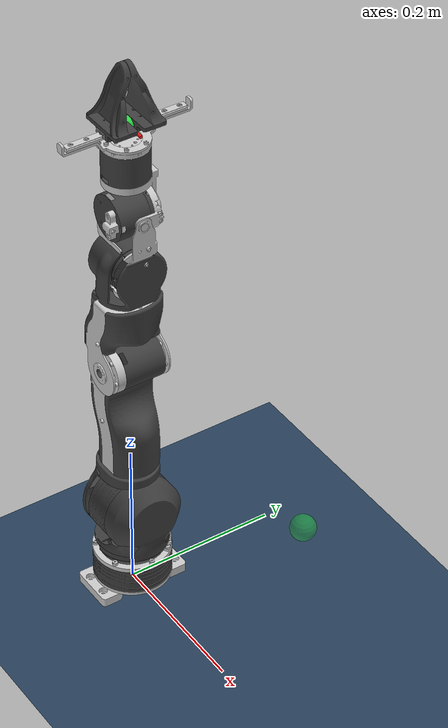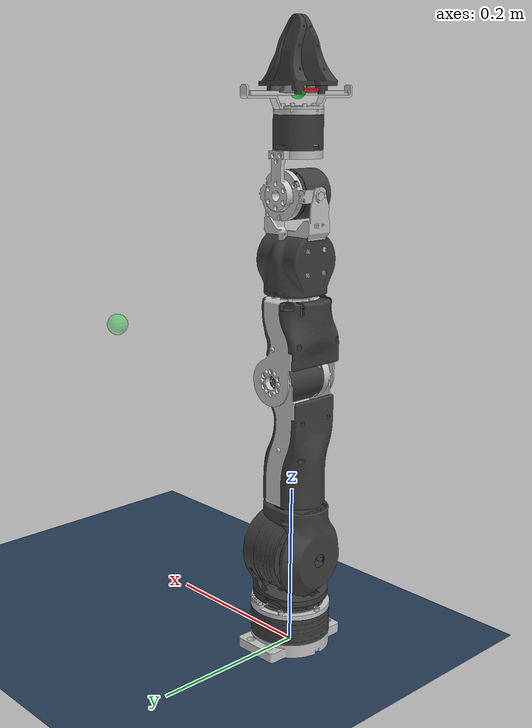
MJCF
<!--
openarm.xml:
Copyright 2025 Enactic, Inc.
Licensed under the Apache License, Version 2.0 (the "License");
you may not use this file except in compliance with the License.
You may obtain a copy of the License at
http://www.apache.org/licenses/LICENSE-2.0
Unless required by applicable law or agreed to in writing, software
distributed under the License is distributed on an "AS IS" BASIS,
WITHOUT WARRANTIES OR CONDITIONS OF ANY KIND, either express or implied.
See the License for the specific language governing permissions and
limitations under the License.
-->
<mujoco model="openarm_so101_umi">
  <compiler angle="radian" autolimits="true" meshdir="meshes"/>
  <option timestep="0.002" gravity="0 0 0" integrator="implicitfast"/>

  <statistic center="0.2 0 0.35" extent="0.9" meansize="0.05"/>

  <visual>
    <headlight diffuse="0.6 0.6 0.6" ambient="0.3 0.3 0.3" specular="0 0 0"/>
    <rgba haze="0.15 0.25 0.35 1"/>
    <global azimuth="150" elevation="-20"/>
  </visual>

  <asset>
    <texture type="skybox" builtin="gradient" rgb1="0.3 0.5 0.7" rgb2="0 0 0" width="512" height="3072"/>
    <texture type="2d" name="groundplane" builtin="checker" mark="edge" rgb1="0.2 0.3 0.4" rgb2="0.1 0.2 0.3"
      markrgb="0.8 0.8 0.8" width="300" height="300"/>
    <material name="groundplane" texture="groundplane" texuniform="true" texrepeat="5 5" reflectance="0.2"/>
  </asset>

  <include file="openarm.xml"/>

  <worldbody>
    <light pos="0 0 1.5" dir="0 0 -1" directional="true"/>
    <geom name="floor" size="0 0 0.05" type="plane" material="groundplane"/>
    <body name="ee_target" mocap="true" pos="0.35 0 0.35">
      <site name="ee_target_site" type="sphere" size="0.015" rgba="0.1 0.9 0.2 0.4" group="0"/>
    </body>
  </worldbody>

  <keyframe>
    <!-- nq=9: j1..j7, finger1, finger2. Table-ready: elbow ~80deg. -->
    <key name="home"
      qpos="0 0.35 0 1.40 0 0 0 0.02 0.02"
      ctrl="0 0.35 0 1.40 0 0 0 0.02"/>
  </keyframe>
</mujoco>

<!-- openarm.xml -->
<mujoco model="openarm">
  <default>
    <default class="robot">
      <default class="motor">
        <joint damping="0.25" frictionloss="0.02"/>
        <motor ctrlrange="-10 10"/>
      </default>
      <default class="collision">
        <geom material="collision_material" condim="3" conaffinity="1" priority="1" group="3" solref="0.005 1"
          friction="1 0.01 0.01"/>
        <equality solimp="0.99 0.999 1e-05" solref="0.005 1"/>
      </default>
      <default class="visual">
        <geom material="visualgeom" contype="0" conaffinity="0" group="2"/>
      </default>
    </default>
  </default>

  <compiler angle="radian" meshdir="meshes"/>

  <asset>
    <material name="default_material" rgba="0.7 0.7 0.7 1"/>
    <material name="collision_material" rgba="1.0 0.28 0.1 0.9"/>
    <material name="matte_black" rgba="0.24705882 0.24705882 0.24705882 1.0" reflectance="0.05098039000000001"
      shininess="0.5"/>
    <material name="metal_silver" rgba="0.79607843 0.79607843 0.79607843 1.0" reflectance="1.0" shininess="1.0"/>
    <material name="robot_blue" rgba="0.2 0.4 0.8 1.0" reflectance="0.3" shininess="0.8"/>
    <material name="robot_gray" rgba="0.5 0.5 0.5 1.0" reflectance="0.2" shininess="0.6"/>

    <!-- Collision STLs omitted (not shipped in upstream v1 mesh pack). -->

    <mesh name="link0_0.obj" file="visual/arm/link0_0.obj" scale="0.001 0.001 0.001"/>
    <mesh name="link0_1.obj" file="visual/arm/link0_1.obj" scale="0.001 0.001 0.001"/>
    <mesh name="link1_0.obj" file="visual/arm/link1_0.obj" scale="0.001 0.001 0.001"/>
    <mesh name="link1_1.obj" file="visual/arm/link1_1.obj" scale="0.001 0.001 0.001"/>
    <mesh name="link1_2.obj" file="visual/arm/link1_2.obj" scale="0.001 0.001 0.001"/>
    <mesh name="link1_3.obj" file="visual/arm/link1_3.obj" scale="0.001 0.001 0.001"/>
    <mesh name="link2_0.obj" file="visual/arm/link2_0.obj" scale="0.001 0.001 0.001"/>
    <mesh name="link2_1.obj" file="visual/arm/link2_1.obj" scale="0.001 0.001 0.001"/>
    <mesh name="link2_2.obj" file="visual/arm/link2_2.obj" scale="0.001 0.001 0.001"/>
    <mesh name="link3_0.obj" file="visual/arm/link3_0.obj" scale="0.001 0.001 0.001"/>
    <mesh name="link3_1.obj" file="visual/arm/link3_1.obj" scale="0.001 0.001 0.001"/>
    <mesh name="link3_2.obj" file="visual/arm/link3_2.obj" scale="0.001 0.001 0.001"/>
    <mesh name="link4_0.obj" file="visual/arm/link4_0.obj" scale="0.001 0.001 0.001"/>
    <mesh name="link4_1.obj" file="visual/arm/link4_1.obj" scale="0.001 0.001 0.001"/>
    <mesh name="link4_2.obj" file="visual/arm/link4_2.obj" scale="0.001 0.001 0.001"/>
    <mesh name="link5_0.obj" file="visual/arm/link5_0.obj" scale="0.001 0.001 0.001"/>
    <mesh name="link5_1.obj" file="visual/arm/link5_1.obj" scale="0.001 0.001 0.001"/>
    <mesh name="link5_2.obj" file="visual/arm/link5_2.obj" scale="0.001 0.001 0.001"/>
    <mesh name="link6_0.obj" file="visual/arm/link6_0.obj" scale="0.001 0.001 0.001"/>
    <mesh name="link6_1.obj" file="visual/arm/link6_1.obj" scale="0.001 0.001 0.001"/>
    <mesh name="link7_0.obj" file="visual/arm/link7_0.obj" scale="0.001 0.001 0.001"/>
    <mesh name="link7_1.obj" file="visual/arm/link7_1.obj" scale="0.001 0.001 0.001"/>

    <mesh name="hand_0.obj" file="visual/gripper/hand_0.obj" scale="0.001 0.001 0.001"/>
    <mesh name="hand_1.obj" file="visual/gripper/hand_1.obj" scale="0.001 0.001 0.001"/>
    <mesh name="finger_0.obj" file="visual/gripper/finger_0.obj" scale="0.001 0.001 0.001"/>
    <mesh name="finger_0_flip.obj" file="visual/gripper/finger_0.obj" scale="0.001 -0.001 0.001"/>
    <mesh name="finger_1.obj" file="visual/gripper/finger_1.obj" scale="0.001 0.001 0.001"/>
    <mesh name="finger_1_flip.obj" file="visual/gripper/finger_1.obj" scale="0.001 -0.001 0.001"/>
  </asset>

  <worldbody>
    <geom name="openarm_link0_visual_0" type="mesh" material="metal_silver" contype="0" conaffinity="0" group="1"
      density="0" mesh="link0_0.obj"/>
    <geom name="openarm_link0_visual_1" type="mesh" material="matte_black" contype="0" conaffinity="0" group="1"
      density="0" mesh="link0_1.obj"/>
    <body name="openarm_link1" pos="0 0 0.0625">
      <inertial pos="0.00114677 -3.31999e-05 0.0539528" quat="0.999653 0.00178277 0.0262159 -0.0018256" mass="1.14167"
        diaginertia="0.00156853 0.001273 0.00101447"/>
      <joint name="openarm_joint1" type="hinge" ref="0.0" pos="0 0 0" axis="0 0 1" range="-1.396263 3.490659"
        class="motor"/>
      <geom name="openarm_link1_visual_0" pos="0 0 -0.0625" quat="1 0 0 0" type="mesh" material="matte_black"
        contype="0" conaffinity="0" group="1" density="0" mesh="link1_0.obj"/>
      <geom name="openarm_link1_visual_1" pos="0 0 -0.0625" quat="1 0 0 0" type="mesh" material="matte_black"
        contype="0" conaffinity="0" group="1" density="0" mesh="link1_1.obj"/>
      <geom name="openarm_link1_visual_2" pos="0 0 -0.0625" quat="1 0 0 0" type="mesh" material="matte_black"
        contype="0" conaffinity="0" group="1" density="0" mesh="link1_2.obj"/>
      <geom name="openarm_link1_visual_3" pos="0 0 -0.0625" quat="1 0 0 0" type="mesh" material="matte_black"
        contype="0" conaffinity="0" group="1" density="0" mesh="link1_3.obj"/>
      <body name="openarm_link2" pos="-0.0301 0 0.06">
        <inertial pos="0.00839629 2.01451e-08 0.0325665" quat="0.966167 0.00423301 0.257864 0.00305037" mass="0.277509"
          diaginertia="0.000421651 0.000376006 0.000169343"/>
        <joint name="openarm_joint2" pos="0 0 0" axis="-1 0 0" range="-1.74533 1.74533" class="motor"/>
        <geom name="openarm_link2_visual_0" pos="0.0301 0 -0.1225" type="mesh" material="matte_black" contype="0"
          conaffinity="0" group="1" density="0" mesh="link2_0.obj"/>
        <geom name="openarm_link2_visual_1" pos="0.0301 0 -0.1225" type="mesh" material="matte_black" contype="0"
          conaffinity="0" group="1" density="0" mesh="link2_1.obj"/>
        <geom name="openarm_link2_visual_2" pos="0.0301 0 -0.1225" type="mesh" material="matte_black" contype="0"
          conaffinity="0" group="1" density="0" mesh="link2_2.obj"/>
        <body name="openarm_link3" pos="0.0301 0 0.06625">
          <inertial pos="-0.00210475 -0.000554909 0.0884747" quat="0.999951 -0.00493243 -0.00144148 0.00846755"
            mass="1.07386" diaginertia="0.00437205 0.00431934 0.000660613"/>
          <joint name="openarm_joint3" type="hinge" ref="0.0" pos="0 0 0" axis="0 0 1" range="-1.570796 1.570796"
            class="motor"/>
          <geom name="openarm_link3_visual_0" pos="0 0 -0.18875" quat="1 0 0 0" type="mesh" material="matte_black"
            contype="0" conaffinity="0" group="1" density="0" mesh="link3_0.obj"/>
          <geom name="openarm_link3_visual_1" pos="0 0 -0.18875" quat="1 0 0 0" type="mesh" material="matte_black"
            contype="0" conaffinity="0" group="1" density="0" mesh="link3_1.obj"/>
          <geom name="openarm_link3_visual_2" pos="0 0 -0.18875" quat="1 0 0 0" type="mesh" material="metal_silver"
            contype="0" conaffinity="0" group="1" density="0" mesh="link3_2.obj"/>
          <body name="openarm_link4" pos="0 0.0315 0.15375">
            <inertial pos="-0.0029006831074562967 -0.03030575826634669 0.06339637422196209" quat="1.0 0.0 0.0 0.0"
              mass="1.3699337287025453" diaginertia="0.001577 0.001346 0.001104"/>
            <joint name="openarm_joint4" type="hinge" ref="0.0" pos="0 0 0" axis="0 1 0" range="0.0 2.443461"
              class="motor"/>
            <geom name="openarm_link4_visual_0" pos="0 -0.0315 -0.3425" quat="1 0 0 0" type="mesh"
              material="matte_black" contype="0" conaffinity="0" group="1" density="0" mesh="link4_0.obj"/>
            <geom name="openarm_link4_visual_1" pos="0 -0.0315 -0.3425" quat="1 0 0 0" type="mesh"
              material="metal_silver" contype="0" conaffinity="0" group="1" density="0" mesh="link4_1.obj"/>
            <geom name="openarm_link4_visual_2" pos="0 -0.0315 -0.3425" quat="1 0 0 0" type="mesh"
              material="matte_black" contype="0" conaffinity="0" group="1" density="0" mesh="link4_2.obj"/>
            <body name="openarm_link5" pos="0 -0.0315 0.0955">
              <inertial pos="-0.00304967 -0.00088669 0.0430798" quat="0.583368 -0.0362076 0.0020034 0.811398"
                mass="0.550659" diaginertia="0.000448064 0.000420549 0.000323387"/>
              <joint name="openarm_joint5" type="hinge" ref="0.0" pos="0 0 0" axis="0 0 1" range="-1.570796 1.570796"
                class="motor"/>
              <geom name="openarm_link5_visual_0" pos="0 0 -0.438" quat="1 0 0 0" type="mesh" material="matte_black"
                contype="0" conaffinity="0" group="1" density="0" mesh="link5_0.obj"/>
              <geom name="openarm_link5_visual_1" pos="0 0 -0.438" quat="1 0 0 0" type="mesh" material="metal_silver"
                contype="0" conaffinity="0" group="1" density="0" mesh="link5_1.obj"/>
              <geom name="openarm_link5_visual_2" pos="0 0 -0.438" quat="1 0 0 0" type="mesh" material="matte_black"
                contype="0" conaffinity="0" group="1" density="0" mesh="link5_2.obj"/>
              <body name="openarm_link6" pos="0.0375 0 0.1205">
                <inertial pos="-0.037136587005447405 0.00033230528343419053 -9.498374522309838e-05"
                  quat="1.0 0.0 0.0 0.0" mass="0.3540202773187987" diaginertia="0.000143 0.000157 0.000159"/>
                <joint name="openarm_joint6" type="hinge" ref="0.0" pos="0 0 0" axis="1 0 0" range="-0.785398 0.785398"
                  class="motor"/>
                <geom name="openarm_link6_visual_0" pos="-0.0375 0 -0.5585" quat="1 0 0 0" type="mesh"
                  material="matte_black" contype="0" conaffinity="0" group="1" density="0" mesh="link6_0.obj"/>
                <geom name="openarm_link6_visual_1" pos="-0.0375 0 -0.5585" quat="1 0 0 0" type="mesh"
                  material="metal_silver" contype="0" conaffinity="0" group="1" density="0" mesh="link6_1.obj"/>
                <body name="openarm_link7" pos="-0.0375 0 0">
                  <inertial pos="6.875510271106056e-05 -0.01766175250761268 0.06651945409987448" quat="1.0 0.0 0.0 0.0"
                    mass="0.5499771327380578" diaginertia="0.000639 0.000497 0.000342"/>
                  <joint name="openarm_joint7" type="hinge" ref="0.0" pos="0 0 0" axis="0 1 0"
                    range="-1.570796 1.570796" class="motor"/>
                  <geom name="openarm_link7_visual_0" pos="0 0 -0.5585" quat="1 0 0 0" type="mesh"
                    material="metal_silver" contype="0" conaffinity="0" group="1" density="0" mesh="link7_0.obj"/>
                  <geom name="openarm_link7_visual_1" pos="0 0 -0.5585" quat="1 0 0 0" type="mesh"
                    material="matte_black" contype="0" conaffinity="0" group="1" density="0" mesh="link7_1.obj"/>
                  <geom name="openarm_hand_visual_0" pos="1e-06 0.0005 -0.5584" quat="1 0 0 0" type="mesh"
                    material="metal_silver" contype="0" conaffinity="0" group="1" density="0" mesh="hand_0.obj"/>
                  <geom name="openarm_hand_visual_1" pos="1e-06 0.0005 -0.5584" quat="1 0 0 0" type="mesh"
                    material="metal_silver" contype="0" conaffinity="0" group="1" density="0" mesh="hand_1.obj"/>

                  <site name="ee_native" pos="0 0.0015 0.1151" size="0.008"
                    rgba="1 0.15 0.15 0.95" group="0"/>
                  <site name="ee_aligned" pos="0 0.0015 0.1151"
                    quat="0.70710678 0 -0.70710678 0"
                    size="0.01" rgba="0.15 0.85 0.25 0.95" group="0"/>
                  <site name="ee_x" pos="0 0.0015 0.1151" quat="0.70710678 0 -0.70710678 0"
                    type="cylinder" size="0.002 0.03" rgba="1 0.1 0.1 1" group="0"/>
                  <body name="openarm_right_finger" pos="1e-06 -0.0045 0.1151">
                    <inertial pos="0.0064528 -0.01702 0.0219685" quat="1.0 0.0 0.0 0.0" mass="0.03602545343277134"
                      diaginertia="2.3749999999999997e-06 2.3749999999999997e-06 7.5e-07"/>
                    <joint name="openarm_finger_joint1" type="slide" ref="0.0" class="motor" range="0.0 0.044"
                      axis="0 -1 0"/>
                    <geom name="openarm_right_finger_visual_0" pos="0 0.05 -0.673001" quat="1 0 0 0" type="mesh"
                      material="robot_gray" contype="0" conaffinity="0" group="1" density="0" mesh="finger_0_flip.obj"/>
                    <geom name="openarm_right_finger_visual_1" pos="0 0.05 -0.673001" quat="1 0 0 0" type="mesh"
                      material="matte_black" contype="0" conaffinity="0" group="1" density="0" mesh="finger_1_flip.obj"/>
                  </body>
                  <body name="openarm_left_finger" pos="1e-06 0.0075 0.1151">
                    <inertial pos="0.0064528 0.01702 0.0219685" quat="1.0 0.0 0.0 0.0" mass="0.03602545343277134"
                      diaginertia="2.3749999999999997e-06 2.3749999999999997e-06 7.5e-07"/>
                    <joint name="openarm_finger_joint2" type="slide" ref="0.0" class="motor" range="0.0 0.044"
                      axis="0 1 0"/>
                    <geom name="openarm_left_finger_visual_0" pos="0 -0.05 -0.673001" quat="1 0 0 0" type="mesh"
                      material="robot_gray" contype="0" conaffinity="0" group="1" density="0" mesh="finger_0.obj"/>
                    <geom name="openarm_left_finger_visual_1" pos="0 -0.05 -0.673001" quat="1 0 0 0" type="mesh"
                      material="matte_black" contype="0" conaffinity="0" group="1" density="0" mesh="finger_1.obj"/>
                  </body>
                </body>
              </body>
            </body>
          </body>
        </body>
      </body>
    </body>
  </worldbody>

  <tendon>
    <fixed name="split">
      <joint joint="openarm_finger_joint1" coef="0.5"/>
      <joint joint="openarm_finger_joint2" coef="0.5"/>
    </fixed>
  </tendon>
  <equality>
    <joint joint1="openarm_finger_joint1" joint2="openarm_finger_joint2" solimp="0.95 0.99 0.001" solref="0.005 1"/>
  </equality>

  <actuator>
    <position name="joint1_ctrl" joint="openarm_joint1" kp="150" dampratio="1" inheritrange="1"/>
    <position name="joint2_ctrl" joint="openarm_joint2" kp="200" dampratio="1" inheritrange="1"/>
    <position name="joint3_ctrl" joint="openarm_joint3" kp="150" dampratio="1" inheritrange="1"/>
    <position name="joint4_ctrl" joint="openarm_joint4" kp="200" dampratio="1" inheritrange="1"/>
    <position name="joint5_ctrl" joint="openarm_joint5" kp="80" dampratio="1" inheritrange="1"/>
    <position name="joint6_ctrl" joint="openarm_joint6" kp="80" dampratio="1" inheritrange="1"/>
    <position name="joint7_ctrl" joint="openarm_joint7" kp="80" dampratio="1" inheritrange="1"/>
    <position name="finger_ctrl" joint="openarm_finger_joint1" kp="50" dampratio="1" ctrlrange="0 0.044"/>
  </actuator>

  <contact>
    <exclude body1="openarm_link1" body2="openarm_link2"/>
    <exclude body1="openarm_link1" body2="openarm_link3"/>
    <exclude body1="openarm_link2" body2="openarm_link3"/>
    <exclude body1="openarm_link3" body2="openarm_link4"/>
    <exclude body1="openarm_link4" body2="openarm_link5"/>
    <exclude body1="openarm_link5" body2="openarm_link6"/>
    <exclude body1="openarm_link5" body2="openarm_link7"/>
    <exclude body1="openarm_link6" body2="openarm_link7"/>
    <exclude body1="openarm_link7" body2="openarm_right_finger"/>
    <exclude body1="openarm_link7" body2="openarm_left_finger"/>
  </contact>
</mujoco>
